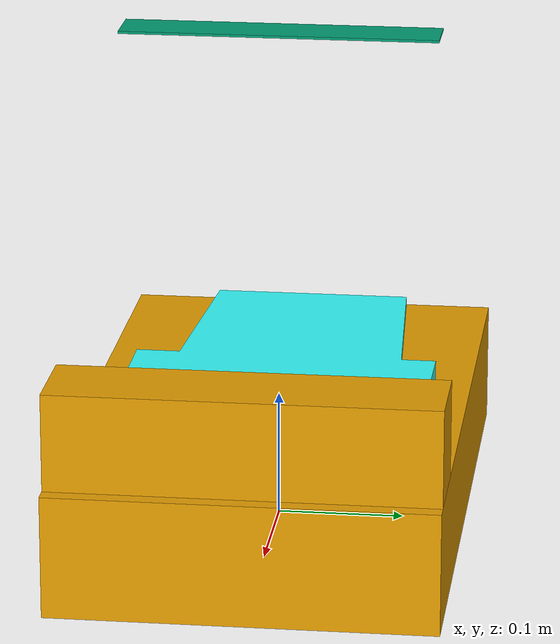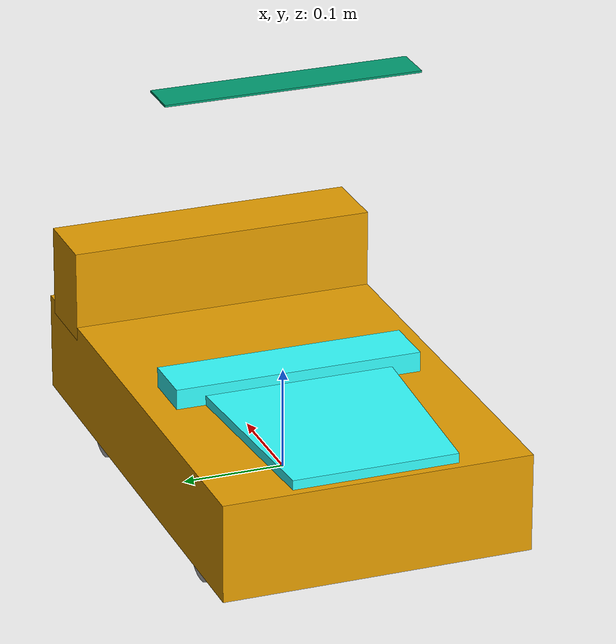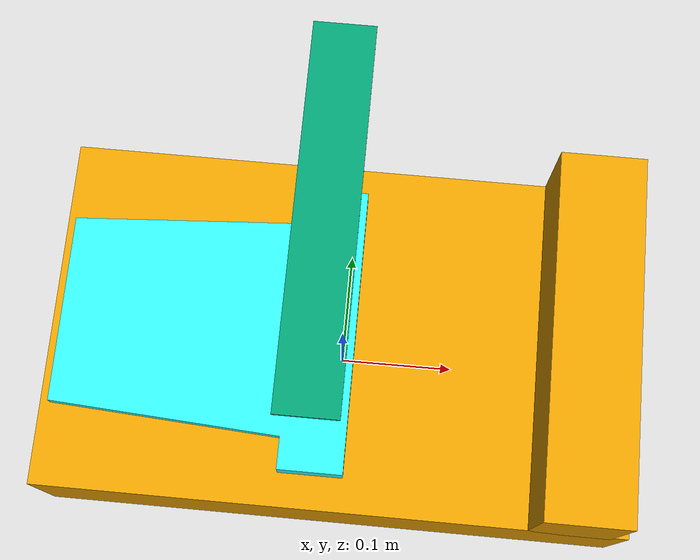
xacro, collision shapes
<?xml version="1.0"?>
<robot xmlns:xacro="http://wiki.ros.org/xacro" name="apollo">
  <xacro:include filename="$(find apollo_description)/urdf/wheel.urdf.xacro"/>
  <xacro:include filename="$(find apollo_description)/urdf/accessories.urdf.xacro"/>
  <link name="base_link">
      <visual>
          <geometry>
            <mesh filename="package://apollo_description/meshes/base_link.stl"/>
          </geometry>
          <origin xyz="0 0 0"/>
      </visual>
      <collision>
        <origin xyz="0 0 0.05" rpy="0 0 0"/>
        <geometry>
          <box size="0.49492 0.300 0.09625"/>
        </geometry>
      </collision>
  </link>
  <link name="inertial_link">
    <inertial>
      <origin xyz="0.0 0.0 0.0" rpy="0 0 0"/>
      <mass value="20.0"/>
      <inertia ixx="0.16544" ixy="0" ixz="0.0" iyy="0.42368" iyz="0" izz="0.5582"/>
    </inertial>
  </link>
  <joint name="inertial" type="fixed">
    <parent link="base_link"/>
    <child link="inertial_link"/>
  </joint>
  <xacro:ultrasonic name="rear" xyz="${-0.49492/2} 0 0" rpy="0 0 ${radians(180)}"/>
  <xacro:ultrasonic name="front" xyz="${0.49492/2} 0 0" rpy="0 0 0"/>
  <xacro:wheel wheel="fl" x_dir="0.14034" y_dir="0.1185"/>
  <xacro:wheel wheel="fr" x_dir="0.14034" y_dir="-0.1185"/>
  <xacro:wheel wheel="rl" x_dir="-0.14034" y_dir="0.1185"/>
  <xacro:wheel wheel="rr" x_dir="-0.14034" y_dir="-0.1185"/>
  <xacro:kinect/>
  <xacro:fork_base/>
  <link name="imu_link"/>
  <joint name="imu_joint" type="fixed">
    <origin xyz="0.0 0.0 0.0" rpy="0.0 0.0 ${radians(0.0)}"/>
    <parent link="base_link"/>
    <child link="imu_link"/>
  </joint>
  <gazebo>
        <plugin name="gazebo_ros_control" filename="libgazebo_ros_control.so"/>
  </gazebo>
  <gazebo>
    <plugin name="ridgeback_ros_force_based_move" filename="libridgeback_ros_force_based_move.so">
      <robotNamespace>/</robotNamespace>
      <commandTopic>apollo_velocity_controller/cmd_vel</commandTopic>
      <odometryTopic>odom</odometryTopic>
      <odometryFrame>odom</odometryFrame>
      <odometryRate>50.0</odometryRate>
      <robotBaseFrame>base_link</robotBaseFrame>
      <cmdVelTimeOut>0.25</cmdVelTimeOut>
      <!-- Don't publish a transform: the controller does it. -->
      <publishOdometryTf>0</publishOdometryTf>
      <yaw_velocity_p_gain>500.0</yaw_velocity_p_gain>
      <x_velocity_p_gain>10000.0</x_velocity_p_gain>
      <y_velocity_p_gain>10000.0</y_velocity_p_gain>
    </plugin>
    <plugin name="imu_controller" filename="libhector_gazebo_ros_imu.so">
      <robotNamespace>/</robotNamespace>
      <updateRate>50.0</updateRate>
      <bodyName>imu_link</bodyName>
      <topicName>imu/data_raw</topicName>
      <accelDrift>0.0 0.0 0.0</accelDrift>
      <accelGaussianNoise>1e-5 1e-5 0.0</accelGaussianNoise>
      <rateDrift>0.0 0.0 0.0</rateDrift>
      <rateGaussianNoise>1e-9 1e-9 1e-9</rateGaussianNoise>
      <headingDrift>0.0</headingDrift>
      <headingGaussianNoise>1e-10</headingGaussianNoise>
    </plugin>
    <plugin name="mag_controller" filename="libhector_gazebo_ros_magnetic.so">
      <robotNamespace>/</robotNamespace>
      <updateRate>50.0</updateRate>
      <bodyName>imu_link</bodyName>
      <topicName>imu/mag_raw</topicName>
      <declination>4.566667</declination>
      <inclination>44.733333</inclination>
      <referenceHeading>0.0</referenceHeading>
      <magnitude>4.37559e-5</magnitude>
      <gaussianNoise>0.0000000001 0.0000000001 0.0000000001</gaussianNoise>
      <offset>1e-5 3e-6 0.0</offset>
      <drift>0.0 0.0 0.0</drift>
      <driftFrequency>0.0 0.0 0.0</driftFrequency>
    </plugin>
  </gazebo>
</robot>

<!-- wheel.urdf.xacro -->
<robot xmlns:xacro="http://wiki.ros.org/xacro" name="wheel">
<xacro:macro name="wheel" params="wheel x_dir y_dir">
  <link name ="${wheel}_wheel">
    <inertial>
      <origin xyz="0.0 0.0 0.0" rpy="0.0 0.0 0.0"/>
      <mass value="0.041913"/>
      <inertia ixx="1.2186E-5" ixy="0.0" ixz="0.0" iyy="1.62E-5" iyz="0.0" izz="1.2186E-5"/>
    </inertial>
      <visual>
          <geometry>
              <mesh filename="package://apollo_description/meshes/wheel.stl"/>
          </geometry>
          <origin xyz ="0 0 0" rpy ="0 0 1.5707963268"/>
          <material name="wheel_material">
            <color rgba="0.75294 0.75294 0.75294 1"/>
          </material>
      </visual>
      <collision>
        <origin xyz="0 0 0"  rpy="1.5707963268 0 0"/>
        <geometry>
          <cylinder radius="0.03" length="0.031"/>
        </geometry>
      </collision>
  </link>
  <joint name="${wheel}_joint" type="continuous">
      <parent link="base_link"/>
      <child link="${wheel}_wheel"/>
      <origin xyz="${x_dir} ${y_dir} 0.001" rpy = "0 0 0"/>
      <axis xyz="0 1 0"/>
  </joint>
  <transmission name="${wheel}_trans">
      <type>transmission_interface/SimpleTransmission</type>
      <joint name="${wheel}_joint">
        <hardwareInterface>hardware_interface/VelocityJointInterface</hardwareInterface>
      </joint>
      <actuator name="${wheel}_motor"/>
  </transmission>
  <gazebo reference="${wheel}_wheel">
      <mu1 value="0.0"/>
      <mu2 value="0.0"/>
  </gazebo>
</xacro:macro>
</robot>

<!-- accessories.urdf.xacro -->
<robot xmlns:xacro="http://wiki.ros.org/xacro" name="kinect">
  <xacro:macro name="kinect" >
    <link name ="kinect_link">
      <visual>
        <origin xyz="0 0 0" rpy="0 0 ${pi/2}"/>
        <geometry>
          <mesh filename="package://apollo_description/meshes/accessories/kinect.dae"/>
        </geometry>
      </visual>
      <inertial>
        <origin xyz="0 0 0" rpy="0 0 0" />
        <mass value="0.556" />
        <inertia ixx="0" ixy="0" ixz="0" iyy="0" iyz="0" izz="0" />
      </inertial>
      <collision>
        <geometry>
          <box size="0.07 0.3 0.09"/>
        </geometry>
      </collision>
    </link>
    <joint name="kinect" type="fixed">
      <origin xyz="0.20 0.0 0.1295" rpy="0 0 0" />
      <parent link="base_link" />
      <child link="kinect_link" />
      <axis xyz="0 0 0" />
    </joint>
    <link name="kinect_frame_optical"/>
    <joint name="kinect_optical_joint" type="fixed">
      <origin xyz="0 0 0.015" rpy="-1.5708 0 -1.5708"/>
      <parent link="kinect_link"/>
      <child link="kinect_frame_optical"/>
    </joint>
    <gazebo reference="kinect_link">
      <sensor type="depth" name="kinect">
        <always_on>true</always_on>
        <update_rate>200.0</update_rate>
        <camera>
          <horizontal_fov>${60.0*pi/180.0}</horizontal_fov>
          <image>
            <format>R8G8B8</format>
            <width>640</width>
            <height>480</height>
          </image>
          <clip>
            <near>0.05</near>
            <far>8.0</far>
          </clip>
        </camera>
        <plugin name="kinect_controller" filename="libgazebo_ros_openni_kinect.so">
          <cameraName>kinect</cameraName>
          <alwaysOn>true</alwaysOn>
          <updateRate>0</updateRate>
          <imageTopicName>rgb/image_raw</imageTopicName>
          <depthImageTopicName>depth/image_raw</depthImageTopicName>
          <pointCloudTopicName>depth/points</pointCloudTopicName>
          <cameraInfoTopicName>rgb/camera_info</cameraInfoTopicName>
          <depthImageCameraInfoTopicName>depth/camera_info</depthImageCameraInfoTopicName>
          <frameName>kinect_frame_optical</frameName>
          <baseline>0.1</baseline>
          <distortion_k1>0.0</distortion_k1>
          <distortion_k2>0.0</distortion_k2>
          <distortion_k3>0.0</distortion_k3>
          <distortion_t1>0.0</distortion_t1>
          <distortion_t2>0.0</distortion_t2>
          <pointCloudCutoff>0.4</pointCloudCutoff>
          <robotNamespace>/</robotNamespace>
        </plugin>
      </sensor>
    </gazebo>
  </xacro:macro>
  <xacro:macro name="ultrasonic" params="name xyz rpy">
    <link name="${name}_ultrasonic"/>
    <joint name="${name}_us_joint" type="fixed">
      <parent link="base_link"/>
      <child link="${name}_ultrasonic"/>
      <origin xyz="${xyz}" rpy="${rpy}"/>
    </joint>
    <gazebo reference="${name}_ultrasonic">
     <sensor type="ray" name="${name}_ultrasonic_sen">
        <pose>${xyz} ${rpy}</pose>
        <update_rate>50</update_rate>
        <ray>
           <scan>
              <horizontal>
                 <samples>1</samples>
                 <resolution>1.0</resolution>
                 <min_angle>-0.1308995</min_angle>
                 <max_angle>0.1308995</max_angle>
              </horizontal>
              <vertical>
                 <samples>1</samples>
                 <resolution>1</resolution>
                 <min_angle>-0.01</min_angle>
                 <max_angle>0.01</max_angle>
              </vertical>
           </scan>
           <range>
              <min>0.02</min>
              <max>2.0</max>
              <resolution>0.02</resolution>
           </range>
        </ray>
        <plugin filename="libgazebo_ros_range.so" name="gazebo_ros_range">
           <gaussianNoise>0.005</gaussianNoise>
           <alwaysOn>true</alwaysOn>
           <updateRate>50</updateRate>
           <topicName>/${name}_ultrasonic</topicName>
           <frameName>${name}_ultrasonic</frameName>
           <visualize>true</visualize>
           <radiation>ultrasonic</radiation>
           <fov>0.261799</fov>
        </plugin>
     </sensor>
   </gazebo>
  </xacro:macro>
  <xacro:macro name="fork_base">
    <link name= "fork_b">
      <visual>
        <origin xyz="0.0 0.0 0.0" rpy="0 0 0"/>
        <geometry>
          <mesh filename="package://apollo_description/meshes/accessories/lift_base_link.stl"/>
        </geometry>
      </visual>
      <inertial>
        <origin xyz="0 0 0.0" rpy="0 0 0" />
        <mass value="0.556" />
        <inertia ixx="0" ixy="0" ixz="0" iyy="0" iyz="0" izz="0" />
      </inertial>
      <collision>
        <geometry>
          <box size="0.040 0.25 0.002"/>
        </geometry>
        <origin xyz="0.015 0 0.395"/>
      </collision>
    </link>
    <joint name="base_fork_joint" type="fixed">
      <origin xyz="-0.0250 0.0 0.0" rpy="0 0 0" />
      <parent link="base_link" />
      <child link="fork_b" />
      <axis xyz="0 0 0" />
    </joint>
    <link name= "fork">
      <visual>
        <origin xyz="0.0 0.0 0.0" rpy="0 0 -1.5708"/>
        <geometry>
          <mesh filename="package://apollo_description/meshes/accessories/fork_link.stl"/>
        </geometry>
        <material name="fork">
       <color rgba="0.2 1.0 1.0 1.0"/>
     </material>
      </visual>
      <inertial>
        <origin xyz="0 0 0.0" rpy="0 0 0" />
        <mass value="1" />
        <inertia ixx="0.166667" ixy="0" ixz="0" iyy="0.166667" iyz="0" izz="0.166667" />
      </inertial>
      <collision>
        <geometry>
          <mesh filename="package://apollo_description/meshes/accessories/fork_collider.stl"/>
        </geometry>
        <origin xyz="0.0 0.0 0.0" rpy="0 0 -1.5708"/>
      </collision>
    </link>
    <joint name="fork_joint" type="prismatic">
      <origin xyz="0.022 0.120 0.097" rpy="0 0 0" />
      <parent link="fork_b" />
      <child link="fork" />
      <axis xyz="0 0 1" />
      <limit effort="100" velocity="0.05" lower="0.0" upper="0.275" />
    </joint>
    <transmission name="fork_transmission">
      <type>transmission_interface/SimpleTransmission</type>
      <joint name="fork_joint">
        <hardwareInterface>hardware_interface/PositionJointInterface</hardwareInterface>
      </joint>
      <actuator name="fork_motor">
        <mechanicalReduction>1</mechanicalReduction>
        <hardwareInterface>hardware_interface/PositionJointInterface</hardwareInterface>
      </actuator>
    </transmission>
    <gazebo reference="fork">
      <turnGravityOff>true</turnGravityOff>
      <collision name="fork_collision">
        <surface>
          <friction>
            <ode>
              <mu>100000</mu>
              <mu2>100000</mu2>
              <fdir1>0.5 0.5 0.5</fdir1>
              <slip1>0</slip1>
              <slip2>0</slip2>
            </ode>
            <torsional>
              <coefficient>1</coefficient>
              <patch_radius>0</patch_radius>
              <surface_radius>0</surface_radius>
              <use_patch_radius>1</use_patch_radius>
              <ode>
                <slip>0</slip>
              </ode>
            </torsional>
          </friction>
          <bounce>
            <restitution_coefficient>0</restitution_coefficient>
            <threshold>1e+06</threshold>
          </bounce>
          <contact>
            <collide_without_contact>0</collide_without_contact>
            <collide_without_contact_bitmask>1</collide_without_contact_bitmask>
            <collide_bitmask>1</collide_bitmask>
            <ode>
              <soft_cfm>0</soft_cfm>
              <soft_erp>0.2</soft_erp>
              <kp>1e+13</kp>
              <kd>1</kd>
              <max_vel>0.01</max_vel>
              <min_depth>0.03</min_depth>
            </ode>
            <bullet>
              <split_impulse>1</split_impulse>
              <split_impulse_penetration_threshold>-0.01</split_impulse_penetration_threshold>
              <soft_cfm>0</soft_cfm>
              <soft_erp>0.2</soft_erp>
              <kp>1e+13</kp>
              <kd>1</kd>
            </bullet>
          </contact>
        </surface>
    </collision>
    <implicitSpringDamper>1</implicitSpringDamper>
    </gazebo>
  </xacro:macro>
</robot>
